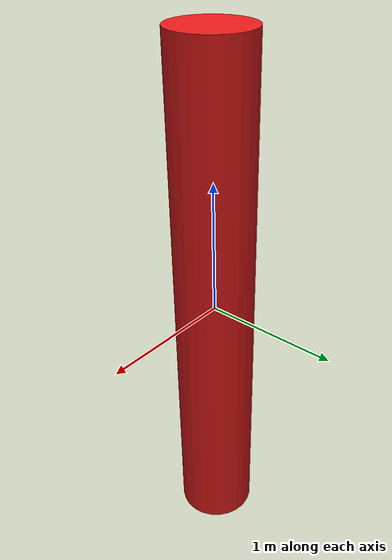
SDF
<?xml version="1.0" ?>
<sdf version="1.5">
  <model name="moving_cylinder">
    <static>0</static>
    <link name="link">
      <inertial>
        <mass>10.0</mass>
        <inertia>
          <ixx>0.1</ixx>
          <iyy>0.1</iyy>
          <izz>0.1</izz>
        </inertia>
      </inertial>
      <collision name="collision">
        <geometry>
          <cylinder>
            <radius>0.3</radius>
            <length>4.0</length>
          </cylinder>
        </geometry>
        <surface>
          <contact>
            <ode/>
          </contact>
          <bounce/>
          <friction>
            <torsional>
              <ode/>
            </torsional>
            <ode/>
          </friction>
        </surface>
        <max_contacts>10</max_contacts>
      </collision>
      <visual name="visual">
        <geometry>
          <cylinder>
            <radius>0.3</radius>
            <length>4.0</length>
          </cylinder>
        </geometry>
        <material>
          <ambient>0.9 0.1 0.1 1</ambient>
          <diffuse>0.9 0.1 0.1 1</diffuse>
          <specular>0.3 0.3 0.3 1</specular>
        </material>
      </visual>
      <self_collide>0</self_collide>
      <enable_wind>0</enable_wind>
      <kinematic>0</kinematic>
    </link>
  </model>
</sdf>
